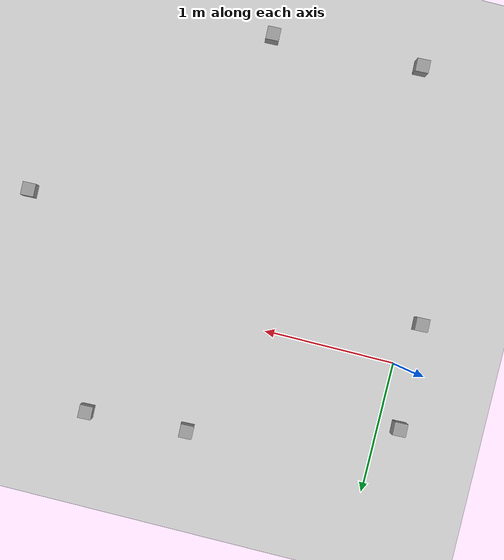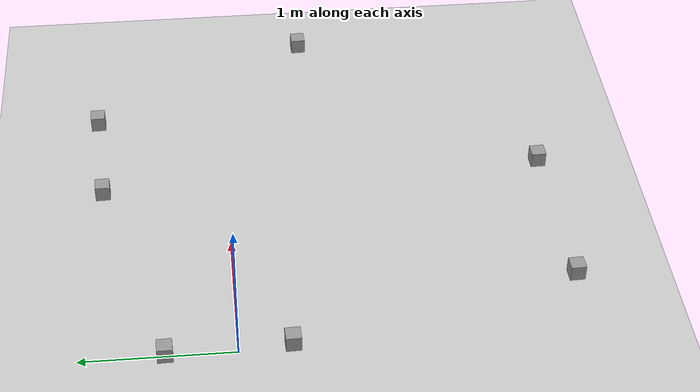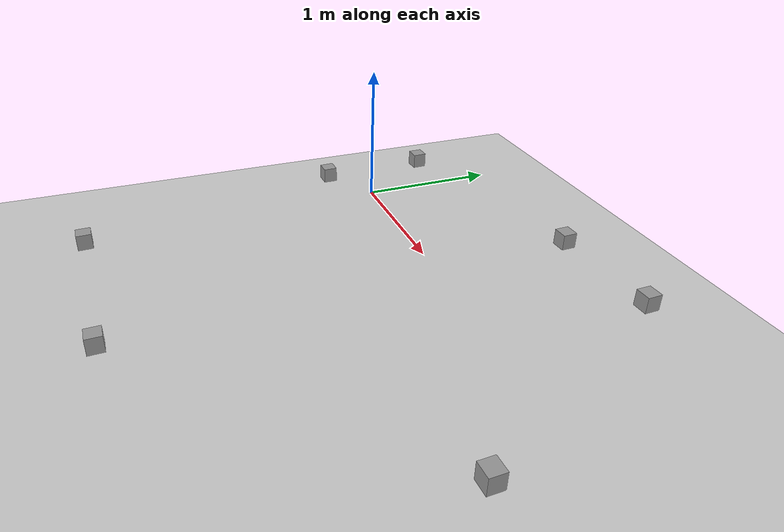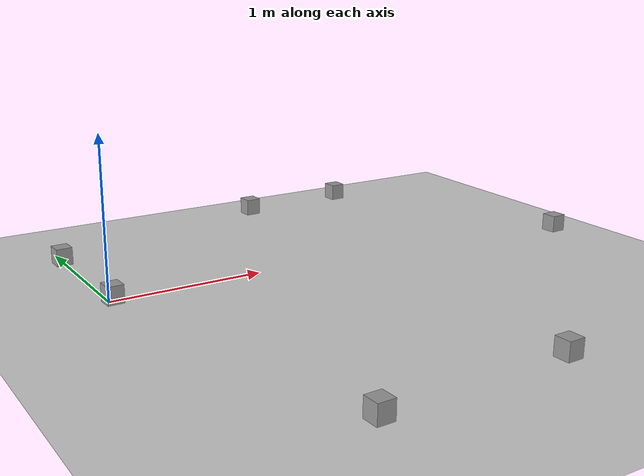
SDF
<sdf version="1.6">
 <world name="default">
  <light name="sun" type="directional">
   <pose>0 0 10 0 -0 0</pose>
   <diffuse>0.8 0.8 0.8 1</diffuse>
   <specular>0.2 0.2 0.2 1</specular>
   <attenuation>
    <range>1000</range>
    <constant>0.9</constant>
    <linear>0.01</linear>
    <quadratic>0.001</quadratic>
   </attenuation>
   <direction>-0.5 0.1 -0.9</direction>
  </light>
  <model name="ground_plane">
   <static>1</static>
   <link name="link">
    <collision name="collision">
     <geometry><plane><normal>0 0 1</normal><size>100 100</size></plane></geometry>
     <surface>
      <contact><collide_bitmask>65535</collide_bitmask></contact>
      <friction><ode><mu>100</mu><mu2>50</mu2></ode></friction>
     </surface>
    </collision>
    <visual name="visual">
     <cast_shadows>0</cast_shadows>
     <geometry><plane><normal>0 0 1</normal><size>100 100</size></plane></geometry>
     <material>
      <script><uri>file://media/materials/scripts/gazebo.material</uri><name>Gazebo/Grey</name></script>
     </material>
    </visual>
   </link>
  </model>
  <gravity>0 0 -9.8</gravity>
  <magnetic_field>6e-06 2.3e-05 -4.2e-05</magnetic_field>
  <atmosphere type="adiabatic"/>
  <physics name="default_physics" default="0" type="ode">
   <max_step_size>0.001</max_step_size>
   <real_time_factor>1</real_time_factor>
   <real_time_update_rate>1000</real_time_update_rate>
  </physics>
  <scene><ambient>0.4 0.4 0.4 1</ambient><background>0.7 0.7 0.7 1</background><shadows>1</shadows></scene>
  <spherical_coordinates>
   <surface_model>EARTH_WGS84</surface_model>
   <latitude_deg>0</latitude_deg>
   <longitude_deg>0</longitude_deg>
   <elevation>0</elevation>
   <heading_deg>0</heading_deg>
  </spherical_coordinates>
  <model name="unit_box">
   <pose>0.359716 -2.18517 0.187708 -0.000496 3e-06 0.037475</pose>
   <link name="link">
    <inertial>
     <mass>1</mass>
     <inertia>
      <ixx>0.166667</ixx>
      <ixy>0</ixy>
      <ixz>0</ixz>
      <iyy>0.166667</iyy>
      <iyz>0</iyz>
      <izz>0.166667</izz>
     </inertia>
     <pose>0 0 0 -1.28319 -0 0</pose>
    </inertial>
    <collision name="collision">
     <geometry><box><size>0.098926 0.097933 0.108286</size></box></geometry>
    </collision>
    <visual name="visual">
     <geometry><box><size>0.098926 0.097933 0.108286</size></box></geometry>
     <material>
      <script><name>Gazebo/Grey</name><uri>file://media/materials/scripts/gazebo.material</uri></script>
     </material>
    </visual>
   </link>
  </model>
  <model name="unit_box_clone">
   <pose>1.48514 -2.14778 0.18762 -0.000497 0 0.031934</pose>
   <link name="link">
    <inertial>
     <mass>1</mass>
     <inertia>
      <ixx>0.166667</ixx>
      <ixy>0</ixy>
      <ixz>0</ixz>
      <iyy>0.166667</iyy>
      <iyz>0</iyz>
      <izz>0.166667</izz>
     </inertia>
    </inertial>
    <collision name="collision">
     <geometry><box><size>0.098926 0.097933 0.108286</size></box></geometry>
    </collision>
    <visual name="visual">
     <geometry><box><size>0.098926 0.097933 0.108286</size></box></geometry>
     <material>
      <script><name>Gazebo/Grey</name><uri>file://media/materials/scripts/gazebo.material</uri></script>
     </material>
    </visual>
   </link>
  </model>
  <audio><device>default</device></audio>
  <model name="unit_box_clone_clone">
   <pose>-0.09303 -0.334588 0.186781 -0.000495 -2e-06 0.031695</pose>
   <link name="link">
    <inertial>
     <mass>1</mass>
     <inertia>
      <ixx>0.166667</ixx>
      <ixy>0</ixy>
      <ixz>0</ixz>
      <iyy>0.166667</iyy>
      <iyz>0</iyz>
      <izz>0.166667</izz>
     </inertia>
    </inertial>
    <collision name="collision">
     <geometry><box><size>0.098926 0.097933 0.108286</size></box></geometry>
    </collision>
    <visual name="visual">
     <geometry><box><size>0.098926 0.097933 0.108286</size></box></geometry>
     <material>
      <script><name>Gazebo/Grey</name><uri>file://media/materials/scripts/gazebo.material</uri></script>
     </material>
    </visual>
   </link>
  </model>
  <model name="unit_box_clone_clone_0">
   <pose>-0.120171 0.447943 0.185077 -0.000495 -1e-06 0.031931</pose>
   <link name="link">
    <inertial>
     <mass>1</mass>
     <inertia>
      <ixx>0.166667</ixx>
      <ixy>0</ixy>
      <ixz>0</ixz>
      <iyy>0.166667</iyy>
      <iyz>0</iyz>
      <izz>0.166667</izz>
     </inertia>
    </inertial>
    <collision name="collision">
     <geometry><box><size>0.098926 0.097933 0.108286</size></box></geometry>
    </collision>
    <visual name="visual">
     <geometry><box><size>0.098926 0.097933 0.108286</size></box></geometry>
     <material>
      <script><name>Gazebo/Grey</name><uri>file://media/materials/scripts/gazebo.material</uri></script>
     </material>
    </visual>
   </link>
  </model>
  <model name="unit_box_clone_clone_1">
   <pose>1.39443 0.843461 0.18622 -0.000497 -2e-06 0.031959</pose>
   <link name="link">
    <inertial>
     <mass>1</mass>
     <inertia>
      <ixx>0.166667</ixx>
      <ixy>0</ixy>
      <ixz>0</ixz>
      <iyy>0.166667</iyy>
      <iyz>0</iyz>
      <izz>0.166667</izz>
     </inertia>
    </inertial>
    <collision name="collision">
     <geometry><box><size>0.098926 0.097933 0.108286</size></box></geometry>
    </collision>
    <visual name="visual">
     <geometry><box><size>0.098926 0.097933 0.108286</size></box></geometry>
     <material>
      <script><name>Gazebo/Grey</name><uri>file://media/materials/scripts/gazebo.material</uri></script>
     </material>
    </visual>
   </link>
  </model>
  <model name="unit_box_clone_clone_2">
   <pose>2.14407 0.885184 0.186212 -0.000498 -1e-06 0.031919</pose>
   <link name="link">
    <inertial>
     <mass>1</mass>
     <inertia>
      <ixx>0.166667</ixx>
      <ixy>0</ixy>
      <ixz>0</ixz>
      <iyy>0.166667</iyy>
      <iyz>0</iyz>
      <izz>0.166667</izz>
     </inertia>
    </inertial>
    <collision name="collision">
     <geometry><box><size>0.098926 0.097933 0.108286</size></box></geometry>
    </collision>
    <visual name="visual">
     <geometry><box><size>0.098926 0.097933 0.108286</size></box></geometry>
     <material>
      <script><name>Gazebo/Grey</name><uri>file://media/materials/scripts/gazebo.material</uri></script>
     </material>
    </visual>
   </link>
  </model>
  <model name="unit_box_clone_clone_3">
   <pose>2.95253 -0.596465 0.186952 -0.000499 -0 0.031903</pose>
   <link name="link">
    <inertial>
     <mass>1</mass>
     <inertia>
      <ixx>0.166667</ixx>
      <ixy>0</ixy>
      <ixz>0</ixz>
      <iyy>0.166667</iyy>
      <iyz>0</iyz>
      <izz>0.166667</izz>
     </inertia>
    </inertial>
    <collision name="collision">
     <geometry><box><size>0.098926 0.097933 0.108286</size></box></geometry>
    </collision>
    <visual name="visual">
     <geometry><box><size>0.098926 0.097933 0.108286</size></box></geometry>
     <material>
      <script><name>Gazebo/Grey</name><uri>file://media/materials/scripts/gazebo.material</uri></script>
     </material>
    </visual>
   </link>
  </model>
 </world>
</sdf>
